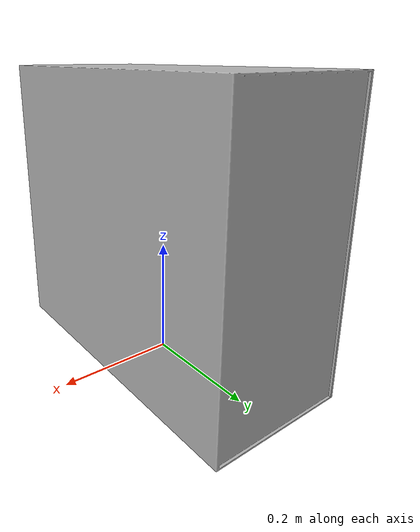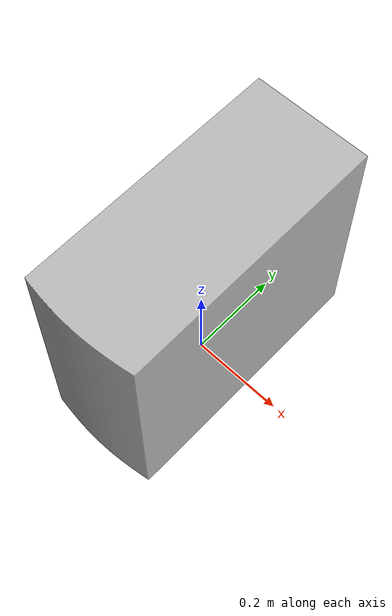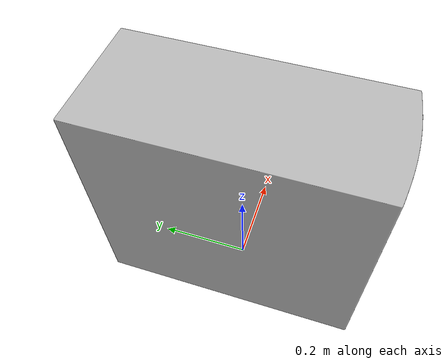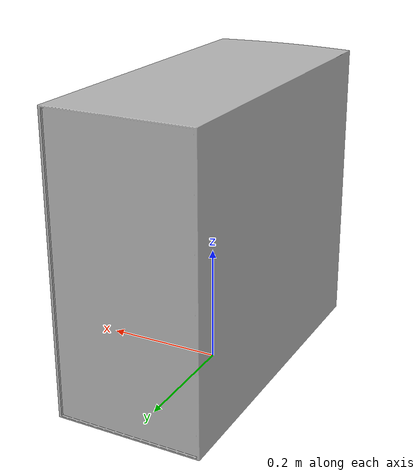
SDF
<?xml version="1.0"?>
<sdf version="1.4">
  <model name="computer">
    <pose>0 0 0 0 0 0</pose>
    <static>true</static>
    <link name="computer_link">
      <collision name="computer_collision">
        <pose>0 0 0 0 0 0</pose>
        <geometry>
          <mesh>
            <uri>model://gazebo_worlds_cdt/models/computer/meshes/computer.dae</uri>
          </mesh>
        </geometry>
      </collision>
      <visual name="computer_visual">
        <pose>0 0 0 0 0 0</pose>
        <geometry>
          <mesh>
            <uri>model://gazebo_worlds_cdt/models/computer/meshes/computer.dae</uri>
          </mesh>
        </geometry>
      </visual>
    </link>
  </model>
</sdf>
